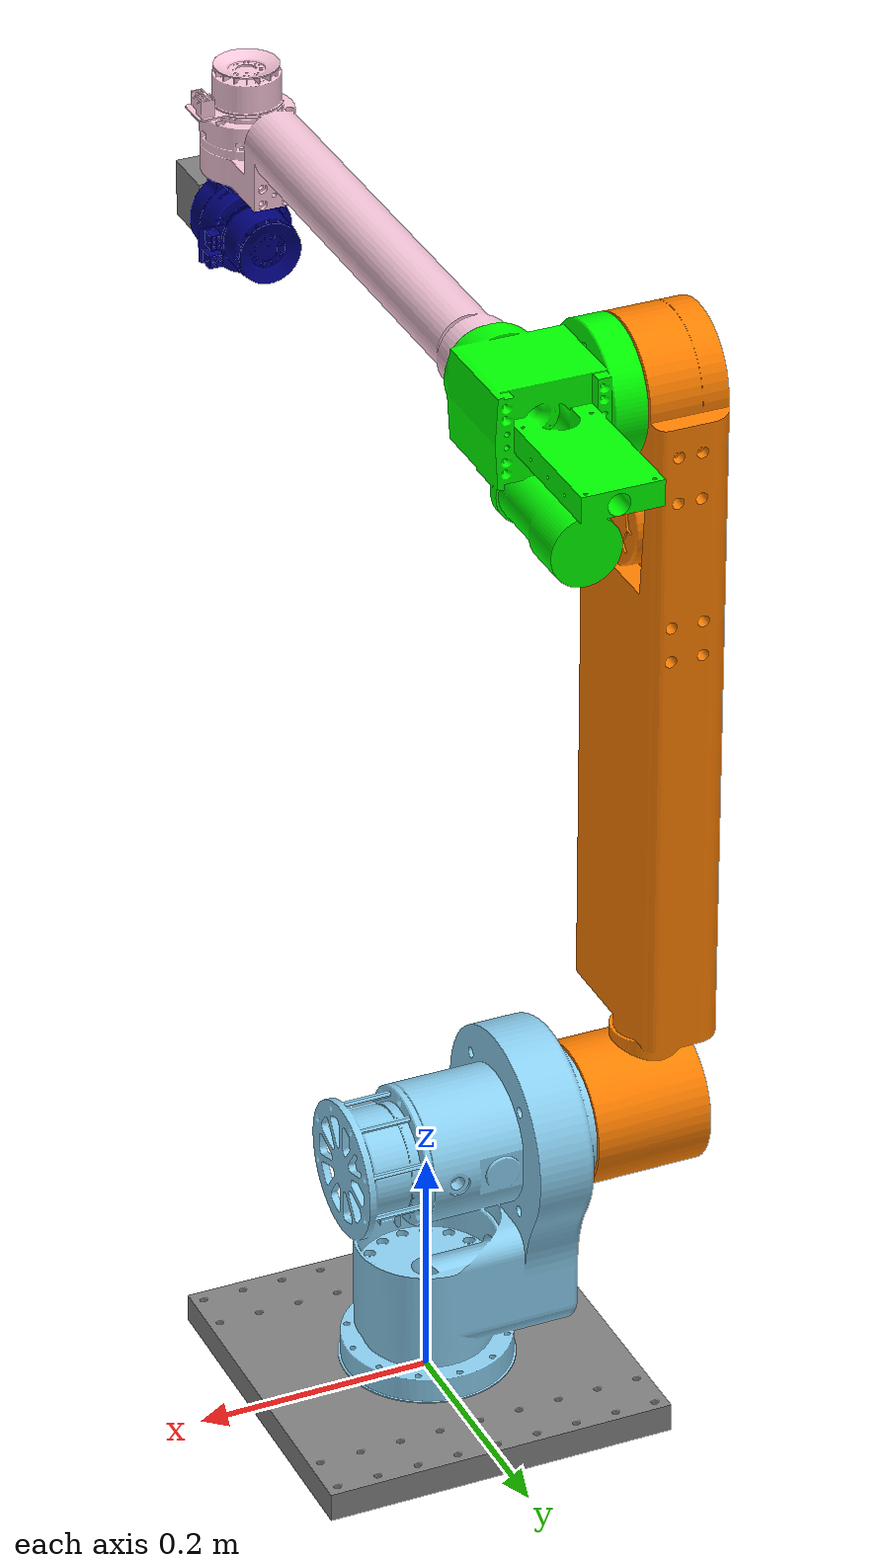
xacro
<?xml version="1.0"?>
<robot xmlns:xacro="http://www.ros.org/wiki/xacro" name="my_robot">
    <xacro:arg name="initial_positions_file" default="initial_positions.yaml" />

    <!-- Import my_robot urdf file -->
    <xacro:include filename="$(find my_robot_description)/urdf/arm.urdf.xacro" />

    <!-- Import control_xacro -->
    <xacro:include filename="my_robot.ros2_control.xacro" />

    <xacro:my_robot_ros2_control name="FakeSystem" initial_positions_file="$(arg initial_positions_file)"/>

</robot>

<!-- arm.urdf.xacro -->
<robot name="my_robot" xmlns:xacro="http://www.ros.org/wiki/xacro">

    <xacro:include filename="common_properties.xacro"/>
    <xacro:include filename="arm.xacro"/>

</robot>

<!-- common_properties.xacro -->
<robot xmlns:xacro="http://www.ros.org/wiki/xacro">

    <material name="red">
        <color rgba="0.5 0.0 0.0 1.0"/>   <!-- Red color with full opacity -->
    </material>

    <material name="orange">
        <color rgba="1.0 0.5 0.0 1.0"/>   <!-- Orange color with full opacity -->
    </material>

    <material name="green">
        <color rgba="0.0 1.0 0.0 1.0"/>   <!-- Green color with full opacity -->
    </material>

    <material name="light_blue">
        <color rgba="0.54 0.81 0.94 1.0"/>   <!-- Light blue color with full opacity -->
    </material>

    <material name="blue">
        <color rgba="0.0 0.0 0.5 1.0"/>   <!-- Blue color with full opacity -->
    </material>

    <material name="pink">
        <color rgba="0.97 0.78 0.86 1.0"/>   <!-- Pink color with full opacity -->
    </material>

    <material name="grey">
        <color rgba="0.5 0.5 0.5 1.0"/>   <!-- Grey color with full opacity -->
    </material>

</robot>

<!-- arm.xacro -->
<robot xmlns:xacro="http://www.ros.org/wiki/xacro">

    <!-- Robot links -->

    <link name="base_link">
        <visual>
            <geometry>
                <mesh filename="package://my_robot_description/meshes/Base Link Visual.stl" scale="0.001 0.001 0.001"/>  <!-- Visual geometry for the base link (STL file) -->
            </geometry>
            <origin xyz="0 0 0" rpy="0 0 0"/>       <!-- Origin of the visual element (centered on the base link) -->
            <material name="grey"/>
        </visual>
        <collision>
            <geometry>
                <mesh filename="package://my_robot_description/meshes/Base Link Collision.stl" scale="0.001 0.001 0.001"/>  <!-- Collision geometry for the base link (STL file) -->
            </geometry>
            <origin xyz="0 0 0" rpy="0 0 0"/>       <!-- Origin of the collision element (centered on the base link) -->
        </collision>
    </link>

    <link name="link1">
        <visual>
            <geometry>
                <mesh filename="package://my_robot_description/meshes/Link 1 Visual.stl" scale="0.001 0.001 0.001"/>  <!-- Visual geometry for the shoulder link (STL file) -->
            </geometry>
            <origin xyz="0 0 0" rpy="0 0 0"/>
            <material name="light_blue"/>
        </visual>
        <collision>
            <geometry>
                <mesh filename="package://my_robot_description/meshes/Link 1 Collision.stl" scale="0.001 0.001 0.001"/>  <!-- Collision geometry for the shoulder link (STL file) -->
            </geometry>
            <origin xyz="0 0 0" rpy="0 0 0"/>
        </collision>
    </link>

    <link name="link2">
        <visual>
            <geometry>
                <mesh filename="package://my_robot_description/meshes/Link 2 Visual.stl" scale="0.001 0.001 0.001"/>  <!-- Visual geometry for the elbow link (STL file) -->
            </geometry>
            <origin xyz="0 0 0" rpy="0 0 0"/>
            <material name="orange"/>
        </visual>
        <collision>
            <geometry>
                <mesh filename="package://my_robot_description/meshes/Link 2 Collision.stl" scale="0.001 0.001 0.001"/>  <!-- Collision geometry for the elbow link (STL file) -->
            </geometry>
            <origin xyz="0 0 0" rpy="0 0 0"/>
        </collision>
    </link>

    <link name="link3">
        <visual>
            <geometry>
                <mesh filename="package://my_robot_description/meshes/Link 3 Visual.stl" scale="0.001 0.001 0.001"/>  <!-- Visual geometry for the wrist link (STL file) -->
            </geometry>
            <origin xyz="0 0 0" rpy="0 0 0"/>
            <material name="green"/>
        </visual>
        <collision>
            <geometry>
                <mesh filename="package://my_robot_description/meshes/Link 3 Collision.stl" scale="0.001 0.001 0.001"/>  <!-- Collision geometry for the wrist link (STL file) -->
            </geometry>
            <origin xyz="0 0 0" rpy="0 0 0"/>
        </collision>
    </link>

    <link name="link4">
        <visual>
            <geometry>
                <mesh filename="package://my_robot_description/meshes/Link 4 Visual.stl" scale="0.001 0.001 0.001"/>  <!-- Visual geometry for the end-effector link (STL file) -->
            </geometry>
            <origin xyz="0 0 0" rpy="0 0 0"/>
            <material name="pink"/>
        </visual>
        <collision>
            <geometry>
                <mesh filename="package://my_robot_description/meshes/Link 4 Collision.stl" scale="0.001 0.001 0.001"/>  <!-- Collision geometry for the end-effector link (STL file) -->
            </geometry>
            <origin xyz="0 0 0" rpy="0 0 0"/>
        </collision>
    </link>

    <link name="link5">
        <visual>
            <geometry>
                <mesh filename="package://my_robot_description/meshes/Link 5 Visual.stl" scale="0.001 0.001 0.001"/>  <!-- Visual geometry for the end-effector link (STL file) -->
            </geometry>
            <origin xyz="0 0 0" rpy="0 0 0"/>
            <material name="blue"/>
        </visual>
        <collision>
            <geometry>
                <mesh filename="package://my_robot_description/meshes/Link 5 Collision.stl" scale="0.001 0.001 0.001"/>  <!-- Collision geometry for the end-effector link (STL file) -->
            </geometry>
            <origin xyz="0 0 0" rpy="0 0 0"/>
        </collision>
    </link>

    <link name="link6">
        <visual>
            <geometry>
                <box size="0.05 0.05 0.05"/>
            </geometry>
            <origin xyz="0 0 0.025" rpy="0 0 0"/>
            <material name="grey"/>
        </visual>
        <collision>
            <geometry>
                <box size="0.05 0.05 0.05"/>
            </geometry>
            <origin xyz="0 0 0.025" rpy="0 0 0"/>
        </collision>
    </link>

    <!-- Robot joints -->

    <joint name="joint1" type="revolute">
        <parent link="base_link"/>                                          <!-- Parent link for joint1 -->
        <child link="link1"/>                                               <!-- Child link for joint1 -->
        <origin xyz="0 0 0" rpy="0 0 0"/>                                   <!-- Origin of the joint -->
        <axis xyz="0 0 1"/>                                                 <!-- Axis of rotation for the revolute joint (z-axis) -->
        <limit effort="37" velocity="0.4" lower="-3.14" upper="3.14"/>  <!-- Joint limits (effort, velocity, lower and upper angle limits in radians) -->
    </joint>

    <joint name="joint2" type="revolute">
        <parent link="link1"/>                                              <!-- Parent link for joint2 -->
        <child link="link2"/>                                               <!-- Child link for joint2 -->
        <origin xyz="-0.145 0 0.212599" rpy="0 0 0"/>                       <!-- Origin of the joint -->
        <axis xyz="1 0 0"/>                                                 <!-- Axis of rotation for the revolute joint (z-axis) -->
        <limit effort="144" velocity="1.96" lower="-1.57079" upper="1.57079"/>  <!-- Joint limits (effort, velocity, lower and upper angle limits in radians) -->
    </joint>

    <joint name="joint3" type="revolute">
        <parent link="link2"/>                                              <!-- Parent link for joint3 -->
        <child link="link3"/>                                               <!-- Child link for joint3 -->
        <origin xyz="-0.017125 0 0.663309" rpy="0 -1.57079 3.14195"/>                                   <!-- Origin of the joint -->
        <axis xyz="0 0 1"/>                                                 <!-- Axis of rotation for the revolute joint (z-axis) -->
        <limit effort="77" velocity="3.65" lower="-4.5" upper="1.4"/>  <!-- Joint limits (effort, velocity, lower and upper angle limits in radians) -->
    </joint>

    <joint name="joint4" type="revolute">
        <parent link="link3"/>                                              <!-- Parent link for joint4 -->
        <child link="link4"/>                                               <!-- Child link for joint4 -->
        <origin xyz="0 0.083285 0.08" rpy="-1.57079 0 0"/>                                   <!-- Origin of the joint -->
        <axis xyz="0 0 1"/>                                                 <!-- Axis of rotation for the revolute joint (z-axis) -->
        <limit effort="25" velocity="2" lower="-3.14159" upper="3.14159"/>  <!-- Joint limits (effort, velocity, lower and upper angle limits in radians) -->
    </joint>

    <joint name="joint5" type="revolute">
        <parent link="link4"/>                                              <!-- Parent link for joint5 -->
        <child link="link5"/>                                               <!-- Child link for joint5 -->
        <origin xyz="-0.054 0 0.4645" rpy="0 1.57079 0"/>                                   <!-- Origin of the joint -->
        <axis xyz="0 0 1"/>                                                 <!-- Axis of rotation for the revolute joint (z-axis) -->
        <limit effort="24" velocity="3.5" lower="-3.14159" upper="3.14159"/>  <!-- Joint limits (effort, velocity, lower and upper angle limits in radians) -->
    </joint>

    <joint name="joint6" type="revolute">
        <parent link="link5"/>                                              <!-- Parent link for joint6 -->
        <child link="link6"/>                                               <!-- Child link for joint6 -->
        <origin xyz="-0.047 0 -0.055033" rpy="0 -1.57079 0"/>               <!-- Origin of the joint -->
        <axis xyz="0 0 1"/>                                                 <!-- Axis of rotation for the revolute joint (z-axis) -->
        <limit effort="12" velocity="3.5" lower="-1.57079" upper="1.57079"/>  <!-- Joint limits (effort, velocity, lower and upper angle limits in radians) -->
    </joint>
</robot>
